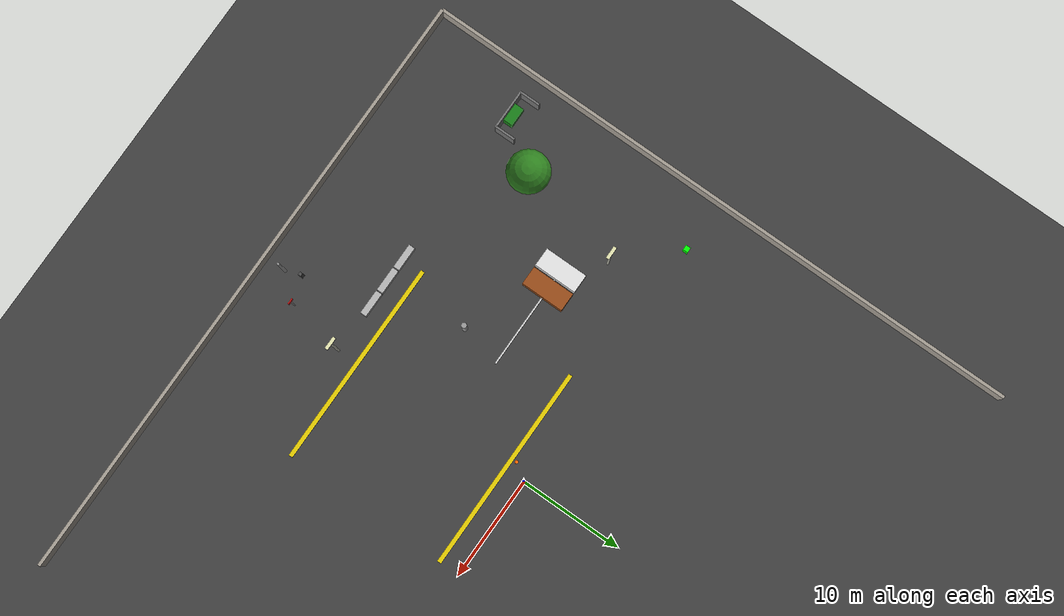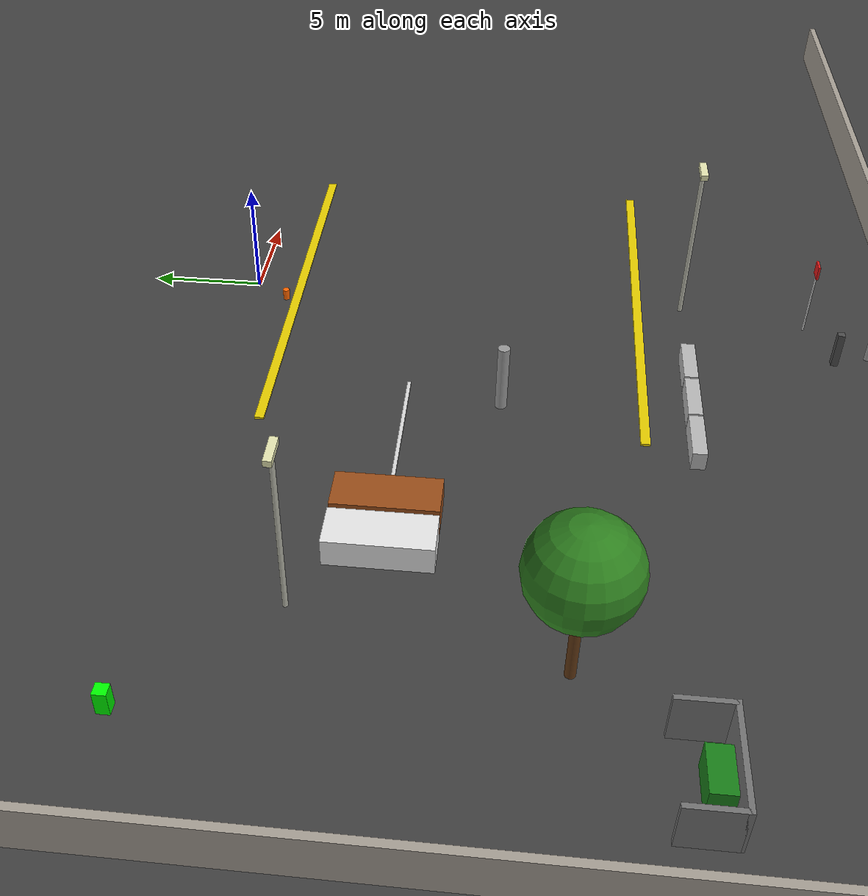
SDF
<sdf version="1.9">
 <world name="togo_parking_lot">
  <model name="ground_plane">
   <static>true</static>
   <link name="link">
    <collision name="collision">
     <geometry><plane><normal>0 0 1</normal><size>200 200</size></plane></geometry>
    </collision>
    <visual name="visual">
     <geometry><plane><normal>0 0 1</normal><size>200 200</size></plane></geometry>
     <material><ambient>0.2 0.2 0.2 1</ambient><diffuse>0.25 0.25 0.25 1</diffuse></material>
    </visual>
   </link>
  </model>
  <model name="wall_south">
   <static>true</static>
   <pose>0 -30 1 0 0 0</pose>
   <link name="link">
    <collision name="collision"><geometry><box><size>60 0.3 2</size></box></geometry></collision>
    <visual name="visual">
     <geometry><box><size>60 0.3 2</size></box></geometry>
     <material><ambient>0.65 0.62 0.58 1</ambient><diffuse>0.65 0.62 0.58 1</diffuse></material>
    </visual>
   </link>
  </model>
  <model name="wall_west">
   <static>true</static>
   <pose>-30 0 1 0 0 0</pose>
   <link name="link">
    <collision name="collision"><geometry><box><size>0.3 60 2</size></box></geometry></collision>
    <visual name="visual">
     <geometry><box><size>0.3 60 2</size></box></geometry>
     <material><ambient>0.65 0.62 0.58 1</ambient><diffuse>0.65 0.62 0.58 1</diffuse></material>
    </visual>
   </link>
  </model>
  <model name="curb_row_c_west">
   <static>true</static>
   <pose>-12 -8 0.08 0 0 0</pose>
   <link name="link">
    <collision name="collision"><geometry><box><size>10 0.15 0.16</size></box></geometry></collision>
    <visual name="visual">
     <geometry><box><size>10 0.15 0.16</size></box></geometry>
     <material><ambient>0.85 0.85 0.85 1</ambient><diffuse>0.85 0.85 0.85 1</diffuse></material>
    </visual>
   </link>
  </model>
  <model name="car_c1">
   <static>true</static>
   <pose>-17 -8 0.4 0 0 0</pose>
   <link name="link">
    <collision name="collision"><geometry><box><size>1.8 4.2 1.5</size></box></geometry></collision>
    <visual name="visual">
     <geometry><box><size>1.8 4.2 1.5</size></box></geometry>
     <material><ambient>0.9 0.9 0.9 1</ambient><diffuse>0.9 0.9 0.9 1</diffuse></material>
    </visual>
   </link>
  </model>
  <model name="car_c2">
   <static>true</static>
   <pose>-15 -8 0.4 0 0 0</pose>
   <link name="link">
    <collision name="collision"><geometry><box><size>1.8 4.2 1.5</size></box></geometry></collision>
    <visual name="visual">
     <geometry><box><size>1.8 4.2 1.5</size></box></geometry>
     <material><ambient>0.6 0.3 0.1 1</ambient><diffuse>0.6 0.3 0.1 1</diffuse></material>
    </visual>
   </link>
  </model>
  <model name="lightpole_2">
   <static>true</static>
   <pose>-20 -5 3.5 0 0 0</pose>
   <link name="link">
    <collision name="collision">
     <geometry><cylinder><radius>0.1</radius><length>7</length></cylinder></geometry>
    </collision>
    <visual name="visual">
     <geometry><cylinder><radius>0.1</radius><length>7</length></cylinder></geometry>
     <material><ambient>0.7 0.7 0.65 1</ambient><diffuse>0.7 0.7 0.65 1</diffuse></material>
    </visual>
   </link>
  </model>
  <model name="lightpole_2_head">
   <static>true</static>
   <pose>-20 -5 7.2 0 0 0</pose>
   <link name="link">
    <collision name="collision"><geometry><box><size>1.2 0.3 0.25</size></box></geometry></collision>
    <visual name="visual">
     <geometry><box><size>1.2 0.3 0.25</size></box></geometry>
     <material><ambient>0.9 0.9 0.7 1</ambient><diffuse>0.9 0.9 0.7 1</diffuse></material>
    </visual>
   </link>
  </model>
  <model name="lightpole_4">
   <static>true</static>
   <pose>0 -20 3.5 0 0 0</pose>
   <link name="link">
    <collision name="collision">
     <geometry><cylinder><radius>0.1</radius><length>7</length></cylinder></geometry>
    </collision>
    <visual name="visual">
     <geometry><cylinder><radius>0.1</radius><length>7</length></cylinder></geometry>
     <material><ambient>0.7 0.7 0.65 1</ambient><diffuse>0.7 0.7 0.65 1</diffuse></material>
    </visual>
   </link>
  </model>
  <model name="lightpole_4_head">
   <static>true</static>
   <pose>0 -20 7.2 0 0 0</pose>
   <link name="link">
    <collision name="collision"><geometry><box><size>1.2 0.3 0.25</size></box></geometry></collision>
    <visual name="visual">
     <geometry><box><size>1.2 0.3 0.25</size></box></geometry>
     <material><ambient>0.9 0.9 0.7 1</ambient><diffuse>0.9 0.9 0.7 1</diffuse></material>
    </visual>
   </link>
  </model>
  <model name="tree_2_trunk">
   <static>true</static>
   <pose>-22 -15 1.2 0 0 0</pose>
   <link name="link">
    <collision name="collision">
     <geometry><cylinder><radius>0.2</radius><length>2.4</length></cylinder></geometry>
    </collision>
    <visual name="visual">
     <geometry><cylinder><radius>0.2</radius><length>2.4</length></cylinder></geometry>
     <material><ambient>0.38 0.22 0.08 1</ambient><diffuse>0.38 0.22 0.08 1</diffuse></material>
    </visual>
   </link>
  </model>
  <model name="tree_2_canopy">
   <static>true</static>
   <pose>-22 -15 5.0 0 0 0</pose>
   <link name="link">
    <collision name="collision"><geometry><sphere><radius>2.0</radius></sphere></geometry></collision>
    <visual name="visual">
     <geometry><sphere><radius>2.0</radius></sphere></geometry>
     <material><ambient>0.18 0.50 0.12 1</ambient><diffuse>0.18 0.50 0.12 1</diffuse></material>
    </visual>
   </link>
  </model>
  <model name="pillar_sw">
   <static>true</static>
   <pose>-8 -12 1.5 0 0 0</pose>
   <link name="link">
    <collision name="collision">
     <geometry><cylinder><radius>0.25</radius><length>3.0</length></cylinder></geometry>
    </collision>
    <visual name="visual">
     <geometry><cylinder><radius>0.25</radius><length>3.0</length></cylinder></geometry>
     <material><ambient>0.6 0.6 0.6 1</ambient><diffuse>0.6 0.6 0.6 1</diffuse></material>
    </visual>
   </link>
  </model>
  <model name="speedbump_0">
   <static>true</static>
   <pose>0 -2 0.05 0 0 0</pose>
   <link name="link">
    <collision name="collision"><geometry><box><size>20 0.4 0.1</size></box></geometry></collision>
    <visual name="visual">
     <geometry><box><size>20 0.4 0.1</size></box></geometry>
     <material><ambient>0.9 0.8 0.0 1</ambient><diffuse>0.9 0.8 0.0 1</diffuse></material>
    </visual>
   </link>
  </model>
  <model name="speedbump_1">
   <static>true</static>
   <pose>0 -18 0.05 0 0 0</pose>
   <link name="link">
    <collision name="collision"><geometry><box><size>20 0.4 0.1</size></box></geometry></collision>
    <visual name="visual">
     <geometry><box><size>20 0.4 0.1</size></box></geometry>
     <material><ambient>0.9 0.8 0.0 1</ambient><diffuse>0.9 0.8 0.0 1</diffuse></material>
    </visual>
   </link>
  </model>
  <model name="dumpster_wall_back">
   <static>true</static>
   <pose>-26 -20 1.0 0 0 0</pose>
   <link name="link">
    <collision name="collision"><geometry><box><size>4.0 0.2 2.0</size></box></geometry></collision>
    <visual name="visual">
     <geometry><box><size>4.0 0.2 2.0</size></box></geometry>
     <material><ambient>0.45 0.45 0.45 1</ambient><diffuse>0.45 0.45 0.45 1</diffuse></material>
    </visual>
   </link>
  </model>
  <model name="dumpster_wall_left">
   <static>true</static>
   <pose>-27.9 -19 1.0 0 0 0</pose>
   <link name="link">
    <collision name="collision"><geometry><box><size>0.2 2.0 2.0</size></box></geometry></collision>
    <visual name="visual">
     <geometry><box><size>0.2 2.0 2.0</size></box></geometry>
     <material><ambient>0.45 0.45 0.45 1</ambient><diffuse>0.45 0.45 0.45 1</diffuse></material>
    </visual>
   </link>
  </model>
  <model name="dumpster_wall_right">
   <static>true</static>
   <pose>-24.1 -19 1.0 0 0 0</pose>
   <link name="link">
    <collision name="collision"><geometry><box><size>0.2 2.0 2.0</size></box></geometry></collision>
    <visual name="visual">
     <geometry><box><size>0.2 2.0 2.0</size></box></geometry>
     <material><ambient>0.45 0.45 0.45 1</ambient><diffuse>0.45 0.45 0.45 1</diffuse></material>
    </visual>
   </link>
  </model>
  <model name="dumpster">
   <static>true</static>
   <pose>-26 -19.5 0.6 0 0 0</pose>
   <link name="link">
    <collision name="collision"><geometry><box><size>1.8 1.0 1.2</size></box></geometry></collision>
    <visual name="visual">
     <geometry><box><size>1.8 1.0 1.2</size></box></geometry>
     <material><ambient>0.1 0.5 0.1 1</ambient><diffuse>0.1 0.5 0.1 1</diffuse></material>
    </visual>
   </link>
  </model>
  <model name="sign_pole_0">
   <static>true</static>
   <pose>-1 -25.5 1.5 0 0 0</pose>
   <link name="link">
    <collision name="collision">
     <geometry><cylinder><radius>0.05</radius><length>3.0</length></cylinder></geometry>
    </collision>
    <visual name="visual">
     <geometry><cylinder><radius>0.05</radius><length>3.0</length></cylinder></geometry>
     <material><ambient>0.7 0.7 0.7 1</ambient><diffuse>0.7 0.7 0.7 1</diffuse></material>
    </visual>
   </link>
  </model>
  <model name="sign_board_0">
   <static>true</static>
   <pose>-1 -25.5 3.2 0 0 0</pose>
   <link name="link">
    <collision name="collision"><geometry><box><size>0.6 0.1 0.6</size></box></geometry></collision>
    <visual name="visual">
     <geometry><box><size>0.6 0.1 0.6</size></box></geometry>
     <material><ambient>0.9 0.1 0.1 1</ambient><diffuse>0.9 0.1 0.1 1</diffuse></material>
    </visual>
   </link>
  </model>
  <model name="entry_arch_left">
   <static>true</static>
   <pose>-3 -28 2.5 0 0 0</pose>
   <link name="link">
    <collision name="collision">
     <geometry><cylinder><radius>0.12</radius><length>5.0</length></cylinder></geometry>
    </collision>
    <visual name="visual">
     <geometry><cylinder><radius>0.12</radius><length>5.0</length></cylinder></geometry>
     <material><ambient>0.6 0.6 0.6 1</ambient><diffuse>0.6 0.6 0.6 1</diffuse></material>
    </visual>
   </link>
  </model>
  <model name="wheelstop_c1">
   <static>true</static>
   <pose>-17 -9.8 0.06 0 0 0</pose>
   <link name="link">
    <collision name="c"><geometry><box><size>1.8 0.15 0.12</size></box></geometry></collision>
    <visual name="v">
     <geometry><box><size>1.8 0.15 0.12</size></box></geometry>
     <material><ambient>0.75 0.75 0.75 1</ambient><diffuse>0.75 0.75 0.75 1</diffuse></material>
    </visual>
   </link>
  </model>
  <model name="wheelstop_c2">
   <static>true</static>
   <pose>-15 -9.8 0.06 0 0 0</pose>
   <link name="link">
    <collision name="c"><geometry><box><size>1.8 0.15 0.12</size></box></geometry></collision>
    <visual name="v">
     <geometry><box><size>1.8 0.15 0.12</size></box></geometry>
     <material><ambient>0.75 0.75 0.75 1</ambient><diffuse>0.75 0.75 0.75 1</diffuse></material>
    </visual>
   </link>
  </model>
  <model name="gate_post_l">
   <static>true</static>
   <pose>-3.5 -26.5 0.8 0 0 0</pose>
   <link name="link">
    <collision name="collision"><geometry><box><size>0.3 0.3 1.6</size></box></geometry></collision>
    <visual name="visual">
     <geometry><box><size>0.3 0.3 1.6</size></box></geometry>
     <material><ambient>0.3 0.3 0.3 1</ambient><diffuse>0.3 0.3 0.3 1</diffuse></material>
    </visual>
   </link>
  </model>
  <model name="jersey_0">
   <static>true</static>
   <pose>-10 -20 0.4 0 0 0</pose>
   <link name="link">
    <collision name="collision"><geometry><box><size>2.4 0.6 0.8</size></box></geometry></collision>
    <visual name="visual">
     <geometry><box><size>2.4 0.6 0.8</size></box></geometry>
     <material><ambient>0.72 0.72 0.72 1</ambient><diffuse>0.72 0.72 0.72 1</diffuse></material>
    </visual>
   </link>
  </model>
  <model name="jersey_1">
   <static>true</static>
   <pose>-7.5 -20 0.4 0 0 0</pose>
   <link name="link">
    <collision name="collision"><geometry><box><size>2.4 0.6 0.8</size></box></geometry></collision>
    <visual name="visual">
     <geometry><box><size>2.4 0.6 0.8</size></box></geometry>
     <material><ambient>0.72 0.72 0.72 1</ambient><diffuse>0.72 0.72 0.72 1</diffuse></material>
    </visual>
   </link>
  </model>
  <model name="jersey_2">
   <static>true</static>
   <pose>-5.0 -20 0.4 0 0 0</pose>
   <link name="link">
    <collision name="collision"><geometry><box><size>2.4 0.6 0.8</size></box></geometry></collision>
    <visual name="visual">
     <geometry><box><size>2.4 0.6 0.8</size></box></geometry>
     <material><ambient>0.72 0.72 0.72 1</ambient><diffuse>0.72 0.72 0.72 1</diffuse></material>
    </visual>
   </link>
  </model>
  <model name="cone_0">
   <static>true</static>
   <pose>-1 -1.5 0.25 0 0 0.4</pose>
   <link name="link">
    <collision name="collision">
     <geometry><cylinder><radius>0.15</radius><length>0.5</length></cylinder></geometry>
    </collision>
    <visual name="visual">
     <geometry><cylinder><radius>0.15</radius><length>0.5</length></cylinder></geometry>
     <material><ambient>1.0 0.4 0.0 1</ambient><diffuse>1.0 0.4 0.0 1</diffuse></material>
    </visual>
   </link>
  </model>
  <model name="target_green">
   <static>true</static>
   <pose>-25 0 0.5 0 0 0</pose>
   <link name="link">
    <collision name="collision"><geometry><box><size>0.5 0.5 1</size></box></geometry></collision>
    <visual name="visual">
     <geometry><box><size>0.5 0.5 1</size></box></geometry>
     <material><ambient>0 1 0 1</ambient><diffuse>0 1 0 1</diffuse></material>
    </visual>
   </link>
  </model>
 </world>
</sdf>
